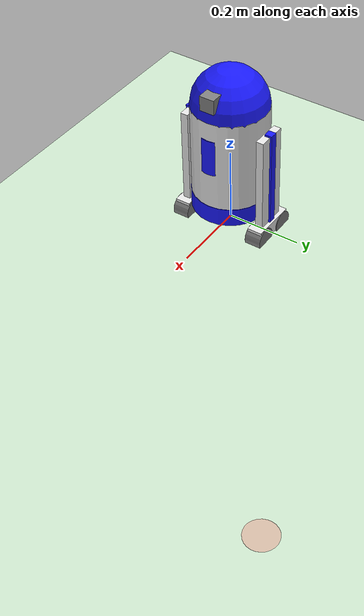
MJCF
<mujoco model="r2d2">
  <compiler angle="degree" coordinate="global" inertiafromgeom="true" />
  <option gravity="0 0 -9.81" integrator="RK4" timestep="0.05" />
  <size nstack="3000" />
   <worldbody>
	<light cutoff="100" diffuse="1 1 1" dir="-0 0 -1.3" directional="true" exponent="1" pos="0 0 1.3" specular=".1 .1 .1" />
    <geom conaffinity="1" condim="3" material="MatPlane" name="floor" pos="0 0 0" rgba="0.8 0.9 0.8 1" size="20 20 .125" type="plane" />
      <body name="torso">
		  <joint type="free" />
         <geom fromto="0 0 0.10 0 0 0.35" rgba=".9 .9 .9 10" size=".1 .3" type="cylinder" />
         <geom fromto="0 0 0.05 0 0 0.10" rgba=".1 .1 1 1" size=".101 .05" type="cylinder" />
         <geom fromto="0.052 0 0.2 0.052 0 0.3" rgba=".1 .1 1 1" size=".05 .1" type="cylinder" />
         <body name="head">
            <joint armature="1" name="neck" pos="0 0 0.35" type="hinge" />
         	<geom pos="0 0 .35" rgba=".1 .1 1 1" size=".1" type="sphere" />
         	<geom pos="0.08 0 0.4" size=".02 .02 .02" type="box" />
         </body>
         <body name="legs">
         	<geom pos="0 -0.11 .17" rgba=".9 .9 .9 10" size="0.04 0.01 0.13" type="box" />
			 <geom pos="0 -0.115 .17" rgba=".1 .1 1 1" size="0.01 0.01 0.135" type="box" />
			 <geom pos="0 0.115 .17" rgba=".1 .1 1 1" size="0.01 0.01 0.135" type="box" />
         	<geom pos="0 0.11 .17" rgba=".9 .9 .9 10" size="0.04 0.01 0.13" type="box" />
         	<body name="feet">
         		<geom pos="0 -.11 0.022" rgba=".9 .9 .9 10" size="0.06 0.02 0.018" type="box" />
         		<geom pos="0 .11 0.022" rgba=".9 .9 .9 10" size="0.06 0.02 0.018" type="box" />
         		<body name="front_right_wheel">
         			<joint armature="1" axis="0 1 0" name="frw_joint" pos="0.04 -.11 0.01" type="hinge" />
         			<geom name="A" pos="0.04 -.11 0.01" quat="0.707123 0.70709 0 0" size=".03 .022" type="cylinder" />
         	    </body>
         	    <body name="front_left_wheel">
         			<joint armature="1" axis="0 1 0" name="flw_joint" pos="0.04 .11 0.01" type="hinge" />
         			<geom name="B" pos="0.04 .11 0.01" quat="0.707123 -0.70709 0 0" size=".03 .022" type="cylinder" />
         		</body>
         		<body name="back_left_wheel">
         			<joint armature="1" axis="0 1 0" name="brw_joint" pos="-0.04 -.11 0.01" type="hinge" />
         			<geom name="C" pos="-0.04 -.11 0.01" quat="0.707123 0.70709 0 0" size=".03 .022" type="cylinder" />
         		</body>
         		<body name="back_right_wheel">
         			<joint armature="1" axis="0 1 0" name="blw_joint" pos="-0.04 .11 0.01" type="hinge" />

         			<geom name="D" pos="-0.04 .11 0.01" quat="0.707123 -0.70709 0 0" size=".03 .022" type="cylinder" />
         		</body>
         	</body>
         </body>
      </body>
<geom name="target" pos="0.8 0.6 0" rgba="1 .1 .1 .1" size="0.04 0.000001" type="cylinder" />
	</worldbody>
       <asset>
        <texture builtin="gradient" height="100" rgb1=".4 .5 .6" rgb2="0 0 0" type="skybox" width="100" />
        <texture builtin="flat" height="1278" mark="cross" markrgb="1 1 1" name="texgeom" random="0.01" rgb1="0.8 0.6 0.4" rgb2="0.8 0.6 0.4" type="cube" width="127" />
        <texture builtin="checker" height="100" name="texplane" rgb1="0 0 0" rgb2="0.8 0.8 0.8" type="2d" width="100" />
        <material name="MatPlane" reflectance="0.5" shininess="1" specular="1" texrepeat="60 60" texture="texplane" />
        <material name="geom" texture="texgeom" texuniform="true" />
	   </asset>

	<actuator>
		<motor ctrlrange="-1 1" gear="1" joint="frw_joint" name="frw_motor" />
		<motor ctrlrange="-1 1" gear="1" joint="flw_joint" name="flw_motor" />
	</actuator>

</mujoco>
